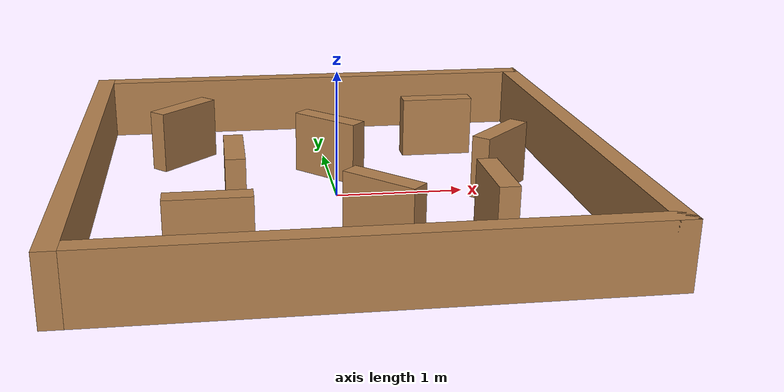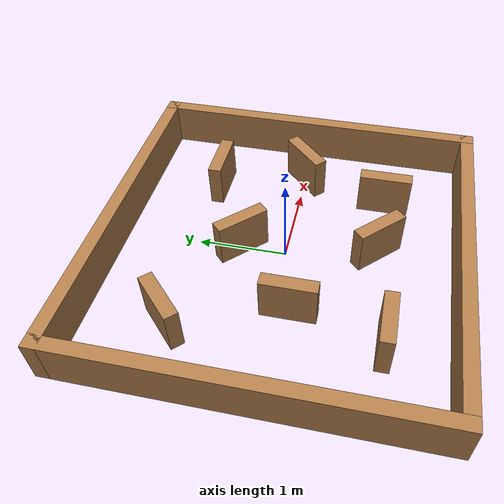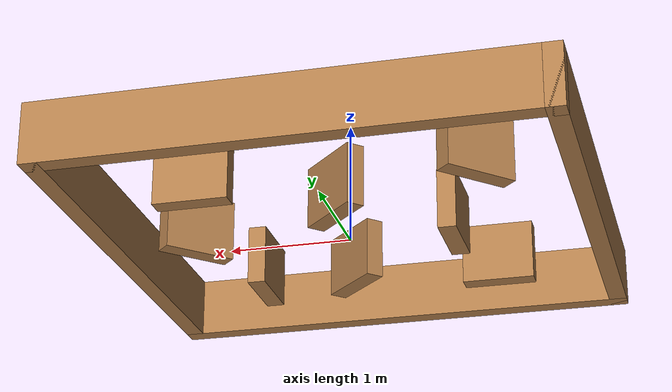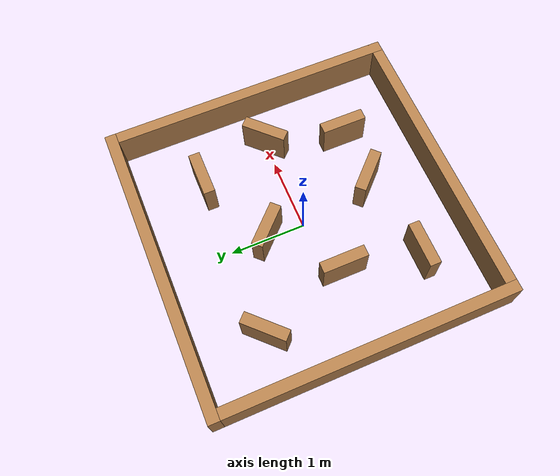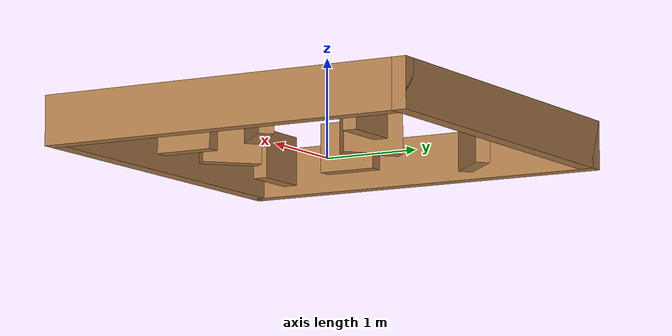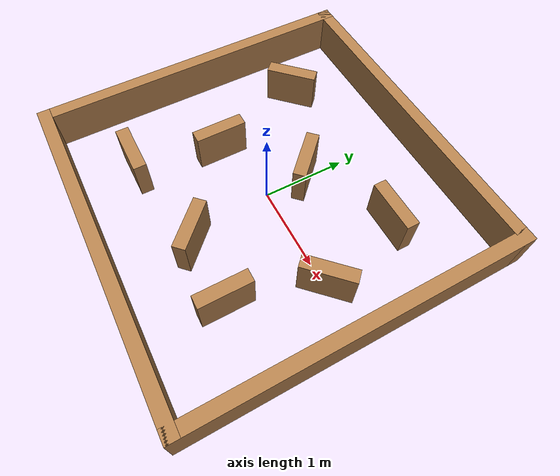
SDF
<?xml version='1.0'?>
<sdf version='1.6'>
  <model name='static_obstacles'>
    <pose frame=''>0 0 0 0 -0 0</pose>
    <link name='Wall_0'>
      <collision name='Wall_0_Collision'>
        <geometry>
          <box>
            <size>4 0.15 0.5</size>
          </box>
        </geometry>
        <pose frame=''>0 0 0.25 0 -0 0</pose>
      </collision>
      <visual name='Wall_0_Visual'>
        <pose frame=''>0 0 0.25 0 -0 0</pose>
        <geometry>
          <box>
            <size>4 0.15 0.5</size>
          </box>
        </geometry>
        <material>
          <script>
            <uri>file://media/materials/scripts/gazebo.material</uri>
            <name>Gazebo/Wood</name>
          </script>
          <ambient>1 1 1 1</ambient>
        </material>
      </visual>
      <pose frame=''>0 1.925 0 0 -0 0</pose>
    </link>
    <link name='Wall_2'>
      <collision name='Wall_2_Collision'>
        <geometry>
          <box>
            <size>4 0.15 0.5</size>
          </box>
        </geometry>
        <pose frame=''>0 0 0.25 0 -0 0</pose>
      </collision>
      <visual name='Wall_2_Visual'>
        <pose frame=''>0 0 0.25 0 -0 0</pose>
        <geometry>
          <box>
            <size>4 0.15 0.5</size>
          </box>
        </geometry>
        <material>
          <script>
            <uri>file://media/materials/scripts/gazebo.material</uri>
            <name>Gazebo/Wood</name>
          </script>
          <ambient>1 1 1 1</ambient>
        </material>
      </visual>
      <pose frame=''>-1.925 0 0 0 0 -1.5708</pose>
    </link>
    <link name='Wall_3'>
      <collision name='Wall_3_Collision'>
        <geometry>
          <box>
            <size>4 0.15 0.5</size>
          </box>
        </geometry>
        <pose frame=''>0 0 0.25 0 -0 0</pose>
      </collision>
      <visual name='Wall_3_Visual'>
        <pose frame=''>0 0 0.25 0 -0 0</pose>
        <geometry>
          <box>
            <size>4 0.15 0.5</size>
          </box>
        </geometry>
        <material>
          <script>
            <uri>file://media/materials/scripts/gazebo.material</uri>
            <name>Gazebo/Wood</name>
          </script>
          <ambient>1 1 1 1</ambient>
        </material>
      </visual>
      <pose frame=''>0 -1.925 0 0 -0 0</pose>
    </link>
    <link name='Wall_4'>
      <collision name='Wall_4_Collision'>
        <geometry>
          <box>
            <size>4 0.15 0.5</size>
          </box>
        </geometry>
        <pose frame=''>0 0 0.25 0 -0 0</pose>
      </collision>
      <visual name='Wall_4_Visual'>
        <pose frame=''>0 0 0.25 0 -0 0</pose>
        <geometry>
          <box>
            <size>4 0.15 0.5</size>
          </box>
        </geometry>
        <material>
          <script>
            <uri>file://media/materials/scripts/gazebo.material</uri>
            <name>Gazebo/Wood</name>
          </script>
          <ambient>1 1 1 1</ambient>
        </material>
      </visual>
      <pose frame=''>1.925 0 0 0 -0 1.5708</pose>
    </link>
    <link name='obstacle_1'>
      <collision name='obstacle_1_Collision'>
        <geometry>
          <box>
            <size>0.6 0.15 0.5</size>
          </box>
        </geometry>
        <pose frame=''>0 0 0.25 0 0 0.785</pose>
      </collision>
      <visual name='obstacle_1_Visual'>
        <pose frame=''>0 0 0.25 0 0 0.785</pose>
        <geometry>
          <box>
            <size>0.6 0.15 0.5</size>
          </box>
        </geometry>
        <material>
          <script>
            <uri>file://media/materials/scripts/gazebo.material</uri>
            <name>Gazebo/Wood</name>
          </script>
          <ambient>1 1 1 1</ambient>
        </material>
      </visual>
      <pose frame=''>0 0.5 0 0 -0 1.5708</pose>
    </link>
    <link name='obstacle_2'>
      <collision name='obstacle_2_Collision'>
        <geometry>
          <box>
            <size>0.6 0.15 0.5</size>
          </box>
        </geometry>
        <pose frame=''>0 0 0.25 0 0 -0.785</pose>
      </collision>
      <visual name='obstacle_2_Visual'>
        <pose frame=''>0 0 0.25 0 0 -0.785</pose>
        <geometry>
          <box>
            <size>0.6 0.15 0.5</size>
          </box>
        </geometry>
        <material>
          <script>
            <uri>file://media/materials/scripts/gazebo.material</uri>
            <name>Gazebo/Wood</name>
          </script>
          <ambient>1 1 1 1</ambient>
        </material>
      </visual>
      <pose frame=''>-1.2 1 0 0 -0 1.5708</pose>
    </link>
    <link name='obstacle_3'>
      <collision name='obstacle_3_Collision'>
        <geometry>
          <box>
            <size>0.6 0.15 0.5</size>
          </box>
        </geometry>
        <pose frame=''>0 0 0.25 0 0 0</pose>
      </collision>
      <visual name='obstacle_3_Visual'>
        <pose frame=''>0 0 0.25 0 0 0</pose>
        <geometry>
          <box>
            <size>0.6 0.15 0.5</size>
          </box>
        </geometry>
        <material>
          <script>
            <uri>file://media/materials/scripts/gazebo.material</uri>
            <name>Gazebo/Wood</name>
          </script>
          <ambient>1 1 1 1</ambient>
        </material>
      </visual>
      <pose frame=''>-0.8 -0.2 0 0 -0 1.5708</pose>
    </link>
    <link name='obstacle_4'>
      <collision name='obstacle_4_Collision'>
        <geometry>
          <box>
            <size>0.6 0.15 0.5</size>
          </box>
        </geometry>
        <pose frame=''>0 0 0.25 0 0 0.785</pose>
      </collision>
      <visual name='obstacle_4_Visual'>
        <pose frame=''>0 0 0.25 0 0 0.785</pose>
        <geometry>
          <box>
            <size>0.6 0.15 0.5</size>
          </box>
        </geometry>
        <material>
          <script>
            <uri>file://media/materials/scripts/gazebo.material</uri>
            <name>Gazebo/Wood</name>
          </script>
          <ambient>1 1 1 1</ambient>
        </material>
      </visual>
      <pose frame=''>0.2 -1 0 0 -0 1.5708</pose>
    </link>
    <link name='obstacle_5'>
      <collision name='obstacle_5_Collision'>
        <geometry>
          <box>
            <size>0.6 0.15 0.5</size>
          </box>
        </geometry>
        <pose frame=''>0 0 0.25 0 0 0</pose>
      </collision>
      <visual name='obstacle_5_Visual'>
        <pose frame=''>0 0 0.25 0 0 0</pose>
        <geometry>
          <box>
            <size>0.6 0.15 0.5</size>
          </box>
        </geometry>
        <material>
          <script>
            <uri>file://media/materials/scripts/gazebo.material</uri>
            <name>Gazebo/Wood</name>
          </script>
          <ambient>1 1 1 1</ambient>
        </material>
      </visual>
      <pose frame=''>-1 -1.2 0 0 -0 0</pose>
    </link>
    <link name='obstacle_6'>
      <collision name='obstacle_6_Collision'>
        <geometry>
          <box>
            <size>0.6 0.15 0.5</size>
          </box>
        </geometry>
        <pose frame=''>0 0 0.25 0 0 0</pose>
      </collision>
      <visual name='obstacle_6_Visual'>
        <pose frame=''>0 0 0.25 0 0 0</pose>
        <geometry>
          <box>
            <size>0.6 0.15 0.5</size>
          </box>
        </geometry>
        <material>
          <script>
            <uri>file://media/materials/scripts/gazebo.material</uri>
            <name>Gazebo/Wood</name>
          </script>
          <ambient>1 1 1 1</ambient>
        </material>
      </visual>
      <pose frame=''>1 -1 0 0 -0 1.5708</pose>
    </link>
    <link name='obstacle_7'>
      <collision name='obstacle_7_Collision'>
        <geometry>
          <box>
            <size>0.6 0.15 0.5</size>
          </box>
        </geometry>
        <pose frame=''>0 0 0.25 0 0 0</pose>
      </collision>
      <visual name='obstacle_7_Visual'>
        <pose frame=''>0 0 0.25 0 0 0</pose>
        <geometry>
          <box>
            <size>0.6 0.15 0.5</size>
          </box>
        </geometry>
        <material>
          <script>
            <uri>file://media/materials/scripts/gazebo.material</uri>
            <name>Gazebo/Wood</name>
          </script>
          <ambient>1 1 1 1</ambient>
        </material>
      </visual>
      <pose frame=''>1 1 0 0 0 0</pose>
    </link>
    <link name='obstacle_7'>
      <collision name='obstacle_7_Collision'>
        <geometry>
          <box>
            <size>0.6 0.15 0.5</size>
          </box>
        </geometry>
        <pose frame=''>0 0 0.25 0 0 0</pose>
      </collision>
      <visual name='obstacle_7_Visual'>
        <pose frame=''>0 0 0.25 0 0 0</pose>
        <geometry>
          <box>
            <size>0.6 0.15 0.5</size>
          </box>
        </geometry>
        <material>
          <script>
            <uri>file://media/materials/scripts/gazebo.material</uri>
            <name>Gazebo/Wood</name>
          </script>
          <ambient>1 1 1 1</ambient>
        </material>
      </visual>
      <pose frame=''>1.3 0 0 0 0 0.785</pose>
    </link>
    <static>1</static>
  </model>
</sdf>
